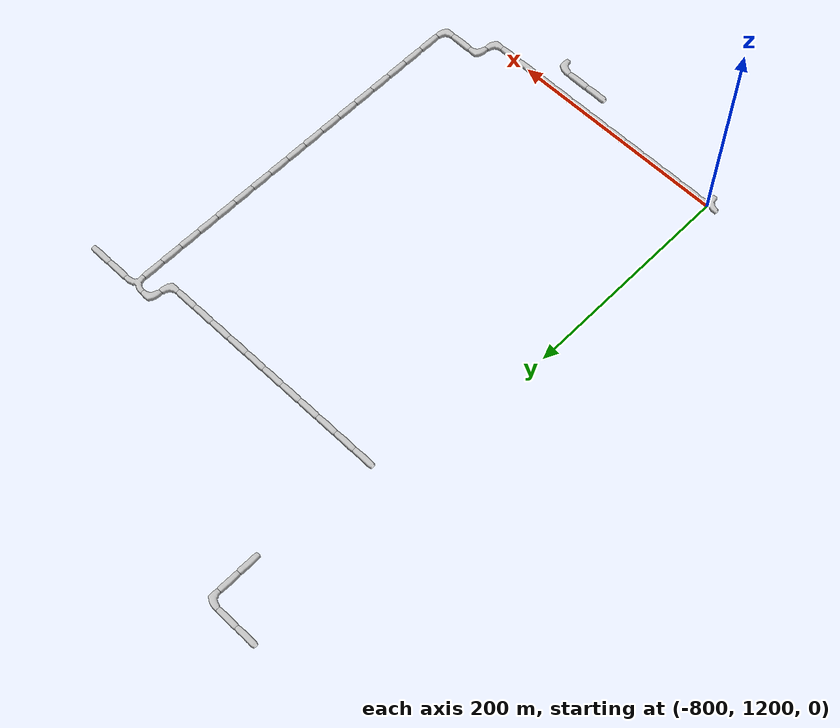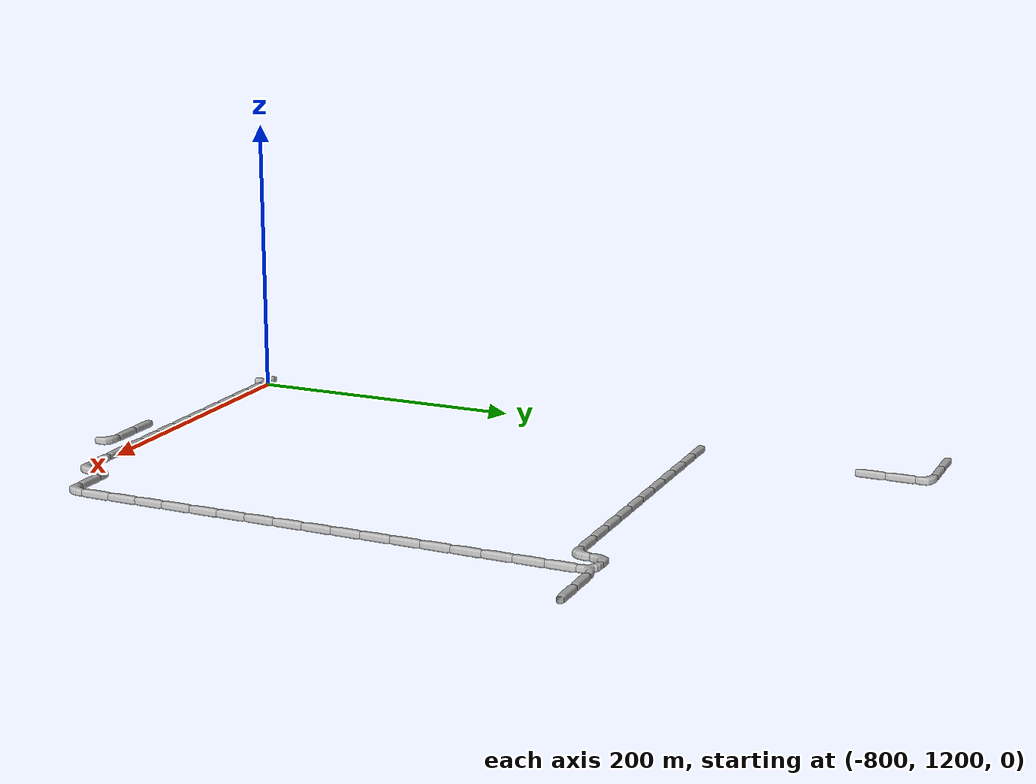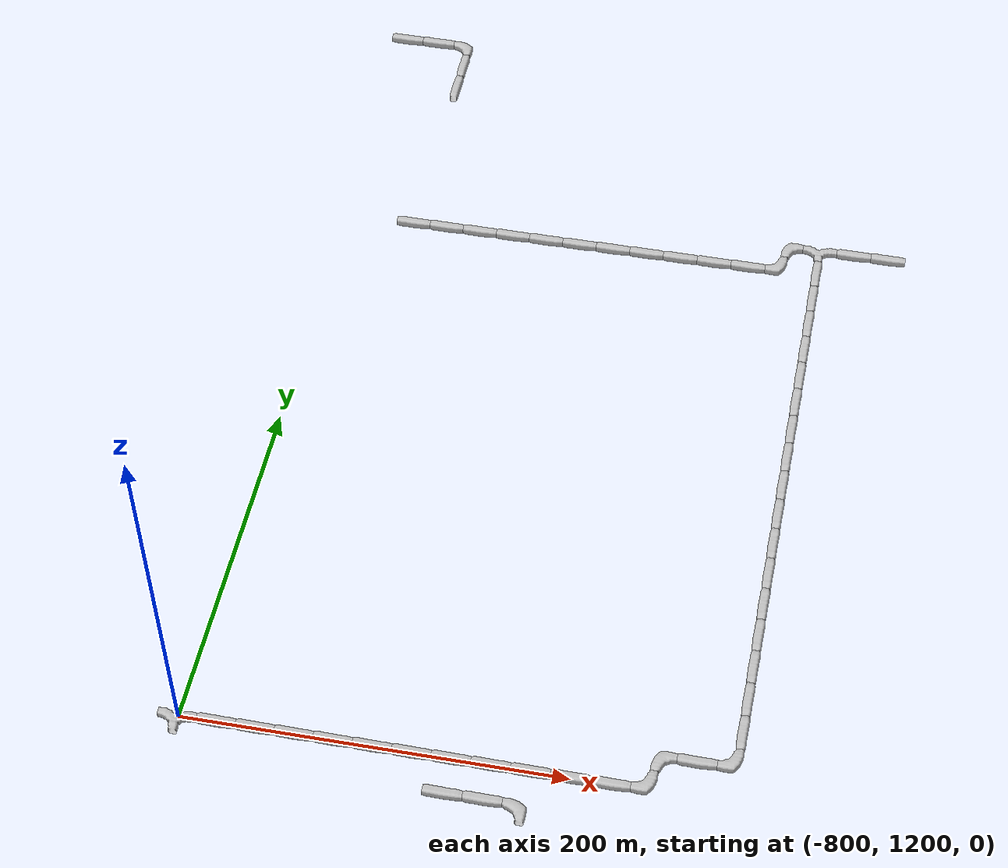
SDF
<sdf version="1.6">
 <world name="cave_32000">
  <include>
   <static>true</static>
   <name>cave_-40_86</name>
   <pose>-800 1720 0 0 0 1.5707963267948966</pose>
   <uri>model://cave_straight_20m</uri>
  </include>
  <include>
   <static>true</static>
   <name>cave_-39_86</name>
   <pose>-780 1720 0 0 0 1.5707963267948966</pose>
   <uri>model://cave_straight_20m</uri>
  </include>
  <include>
   <static>true</static>
   <name>cave_-38_86</name>
   <pose>-760 1720 0 0 0 3.141592653589793</pose>
   <uri>model://cave_L_20m</uri>
  </include>
  <include>
   <static>true</static>
   <name>cave_-38_85</name>
   <pose>-760 1700 0 0 0 0.0</pose>
   <uri>model://cave_straight_20m</uri>
  </include>
  <include>
   <static>true</static>
   <name>cave_-38_84</name>
   <pose>-760 1680 0 0 0 0.0</pose>
   <uri>model://cave_straight_20m</uri>
  </include>
  <include>
   <static>true</static>
   <name>cave_-31_59</name>
   <pose>-620 1180 0 0 0 3.141592653589793</pose>
   <uri>model://cave_L_20m</uri>
  </include>
  <include>
   <static>true</static>
   <name>cave_-32_59</name>
   <pose>-640 1180 0 0 0 1.5707963267948966</pose>
   <uri>model://cave_straight_20m</uri>
  </include>
  <include>
   <static>true</static>
   <name>cave_-33_59</name>
   <pose>-660 1180 0 0 0 1.5707963267948966</pose>
   <uri>model://cave_straight_20m</uri>
  </include>
  <include>
   <static>true</static>
   <name>cave_-40_60</name>
   <pose>-800 1200 0 0 0 3.141592653589793</pose>
   <uri>model://cave_3way_20m</uri>
  </include>
  <include>
   <static>true</static>
   <name>cave_-39_60</name>
   <pose>-780 1200 0 0 0 1.5707963267948966</pose>
   <uri>model://cave_straight_20m</uri>
  </include>
  <include>
   <static>true</static>
   <name>cave_-38_60</name>
   <pose>-760 1200 0 0 0 1.5707963267948966</pose>
   <uri>model://cave_straight_20m</uri>
  </include>
  <include>
   <static>true</static>
   <name>cave_-37_60</name>
   <pose>-740 1200 0 0 0 1.5707963267948966</pose>
   <uri>model://cave_straight_20m</uri>
  </include>
  <include>
   <static>true</static>
   <name>cave_-36_60</name>
   <pose>-720 1200 0 0 0 1.5707963267948966</pose>
   <uri>model://cave_straight_20m</uri>
  </include>
  <include>
   <static>true</static>
   <name>cave_-35_60</name>
   <pose>-700 1200 0 0 0 1.5707963267948966</pose>
   <uri>model://cave_straight_20m</uri>
  </include>
  <include>
   <static>true</static>
   <name>cave_-34_60</name>
   <pose>-680 1200 0 0 0 1.5707963267948966</pose>
   <uri>model://cave_straight_20m</uri>
  </include>
  <include>
   <static>true</static>
   <name>cave_-33_60</name>
   <pose>-660 1200 0 0 0 1.5707963267948966</pose>
   <uri>model://cave_straight_20m</uri>
  </include>
  <include>
   <static>true</static>
   <name>cave_-32_60</name>
   <pose>-640 1200 0 0 0 1.5707963267948966</pose>
   <uri>model://cave_straight_20m</uri>
  </include>
  <include>
   <static>true</static>
   <name>cave_-31_60</name>
   <pose>-620 1200 0 0 0 1.5707963267948966</pose>
   <uri>model://cave_straight_20m</uri>
  </include>
  <include>
   <static>true</static>
   <name>cave_-30_60</name>
   <pose>-600 1200 0 0 0 1.5707963267948966</pose>
   <uri>model://cave_straight_20m</uri>
  </include>
  <include>
   <static>true</static>
   <name>cave_-29_60</name>
   <pose>-580 1200 0 0 0 1.5707963267948966</pose>
   <uri>model://cave_straight_20m</uri>
  </include>
  <include>
   <static>true</static>
   <name>cave_-28_60</name>
   <pose>-560 1200 0 0 0 1.5707963267948966</pose>
   <uri>model://cave_L_20m</uri>
  </include>
  <include>
   <static>true</static>
   <name>cave_-28_61</name>
   <pose>-560 1220 0 0 0 -1.5707963267948966</pose>
   <uri>model://cave_L_20m</uri>
  </include>
  <include>
   <static>true</static>
   <name>cave_-27_61</name>
   <pose>-540 1220 0 0 0 1.5707963267948966</pose>
   <uri>model://cave_straight_20m</uri>
  </include>
  <include>
   <static>true</static>
   <name>cave_-26_61</name>
   <pose>-520 1220 0 0 0 1.5707963267948966</pose>
   <uri>model://cave_L_20m</uri>
  </include>
  <include>
   <static>true</static>
   <name>cave_-26_62</name>
   <pose>-520 1240 0 0 0 0.0</pose>
   <uri>model://cave_straight_20m</uri>
  </include>
  <include>
   <static>true</static>
   <name>cave_-26_63</name>
   <pose>-520 1260 0 0 0 0.0</pose>
   <uri>model://cave_straight_20m</uri>
  </include>
  <include>
   <static>true</static>
   <name>cave_-26_64</name>
   <pose>-520 1280 0 0 0 0.0</pose>
   <uri>model://cave_straight_20m</uri>
  </include>
  <include>
   <static>true</static>
   <name>cave_-26_65</name>
   <pose>-520 1300 0 0 0 0.0</pose>
   <uri>model://cave_straight_20m</uri>
  </include>
  <include>
   <static>true</static>
   <name>cave_-26_66</name>
   <pose>-520 1320 0 0 0 0.0</pose>
   <uri>model://cave_straight_20m</uri>
  </include>
  <include>
   <static>true</static>
   <name>cave_-26_67</name>
   <pose>-520 1340 0 0 0 0.0</pose>
   <uri>model://cave_straight_20m</uri>
  </include>
  <include>
   <static>true</static>
   <name>cave_-26_68</name>
   <pose>-520 1360 0 0 0 0.0</pose>
   <uri>model://cave_straight_20m</uri>
  </include>
  <include>
   <static>true</static>
   <name>cave_-26_69</name>
   <pose>-520 1380 0 0 0 0.0</pose>
   <uri>model://cave_straight_20m</uri>
  </include>
  <include>
   <static>true</static>
   <name>cave_-26_70</name>
   <pose>-520 1400 0 0 0 0.0</pose>
   <uri>model://cave_straight_20m</uri>
  </include>
  <include>
   <static>true</static>
   <name>cave_-26_71</name>
   <pose>-520 1420 0 0 0 0.0</pose>
   <uri>model://cave_straight_20m</uri>
  </include>
  <include>
   <static>true</static>
   <name>cave_-26_72</name>
   <pose>-520 1440 0 0 0 0.0</pose>
   <uri>model://cave_straight_20m</uri>
  </include>
  <include>
   <static>true</static>
   <name>cave_-26_73</name>
   <pose>-520 1460 0 0 0 0.0</pose>
   <uri>model://cave_straight_20m</uri>
  </include>
  <include>
   <static>true</static>
   <name>cave_-26_74</name>
   <pose>-520 1480 0 0 0 0.0</pose>
   <uri>model://cave_straight_20m</uri>
  </include>
  <include>
   <static>true</static>
   <name>cave_-26_75</name>
   <pose>-520 1500 0 0 0 0.0</pose>
   <uri>model://cave_straight_20m</uri>
  </include>
  <include>
   <static>true</static>
   <name>cave_-26_76</name>
   <pose>-520 1520 0 0 0 0.0</pose>
   <uri>model://cave_straight_20m</uri>
  </include>
  <include>
   <static>true</static>
   <name>cave_-26_77</name>
   <pose>-520 1540 0 0 0 0.0</pose>
   <uri>model://cave_straight_20m</uri>
  </include>
  <include>
   <static>true</static>
   <name>cave_-26_78</name>
   <pose>-520 1560 0 0 0 0.0</pose>
   <uri>model://cave_straight_20m</uri>
  </include>
  <include>
   <static>true</static>
   <name>cave_-26_79</name>
   <pose>-520 1580 0 0 0 3.141592653589793</pose>
   <uri>model://cave_3way_20m</uri>
  </include>
  <include>
   <static>true</static>
   <name>cave_-25_79</name>
   <pose>-500 1580 0 0 0 1.5707963267948966</pose>
   <uri>model://cave_straight_20m</uri>
  </include>
  <include>
   <static>true</static>
   <name>cave_-24_79</name>
   <pose>-480 1580 0 0 0 1.5707963267948966</pose>
   <uri>model://cave_straight_20m</uri>
  </include>
  <include>
   <static>true</static>
   <name>cave_-27_79</name>
   <pose>-540 1580 0 0 0 -1.5707963267948966</pose>
   <uri>model://cave_L_20m</uri>
  </include>
  <include>
   <static>true</static>
   <name>cave_-27_78</name>
   <pose>-540 1560 0 0 0 1.5707963267948966</pose>
   <uri>model://cave_L_20m</uri>
  </include>
  <include>
   <static>true</static>
   <name>cave_-28_78</name>
   <pose>-560 1560 0 0 0 1.5707963267948966</pose>
   <uri>model://cave_straight_20m</uri>
  </include>
  <include>
   <static>true</static>
   <name>cave_-29_78</name>
   <pose>-580 1560 0 0 0 1.5707963267948966</pose>
   <uri>model://cave_straight_20m</uri>
  </include>
  <include>
   <static>true</static>
   <name>cave_-30_78</name>
   <pose>-600 1560 0 0 0 1.5707963267948966</pose>
   <uri>model://cave_straight_20m</uri>
  </include>
  <include>
   <static>true</static>
   <name>cave_-31_78</name>
   <pose>-620 1560 0 0 0 1.5707963267948966</pose>
   <uri>model://cave_straight_20m</uri>
  </include>
  <include>
   <static>true</static>
   <name>cave_-32_78</name>
   <pose>-640 1560 0 0 0 1.5707963267948966</pose>
   <uri>model://cave_straight_20m</uri>
  </include>
  <include>
   <static>true</static>
   <name>cave_-33_78</name>
   <pose>-660 1560 0 0 0 1.5707963267948966</pose>
   <uri>model://cave_straight_20m</uri>
  </include>
  <include>
   <static>true</static>
   <name>cave_-34_78</name>
   <pose>-680 1560 0 0 0 1.5707963267948966</pose>
   <uri>model://cave_straight_20m</uri>
  </include>
  <include>
   <static>true</static>
   <name>cave_-35_78</name>
   <pose>-700 1560 0 0 0 1.5707963267948966</pose>
   <uri>model://cave_straight_20m</uri>
  </include>
  <include>
   <static>true</static>
   <name>cave_-36_78</name>
   <pose>-720 1560 0 0 0 1.5707963267948966</pose>
   <uri>model://cave_straight_20m</uri>
  </include>
  <include>
   <static>true</static>
   <name>cave_-37_78</name>
   <pose>-740 1560 0 0 0 1.5707963267948966</pose>
   <uri>model://cave_straight_20m</uri>
  </include>
  <include>
   <static>true</static>
   <name>cave_-38_78</name>
   <pose>-760 1560 0 0 0 1.5707963267948966</pose>
   <uri>model://cave_straight_20m</uri>
  </include>
 </world>
</sdf>
